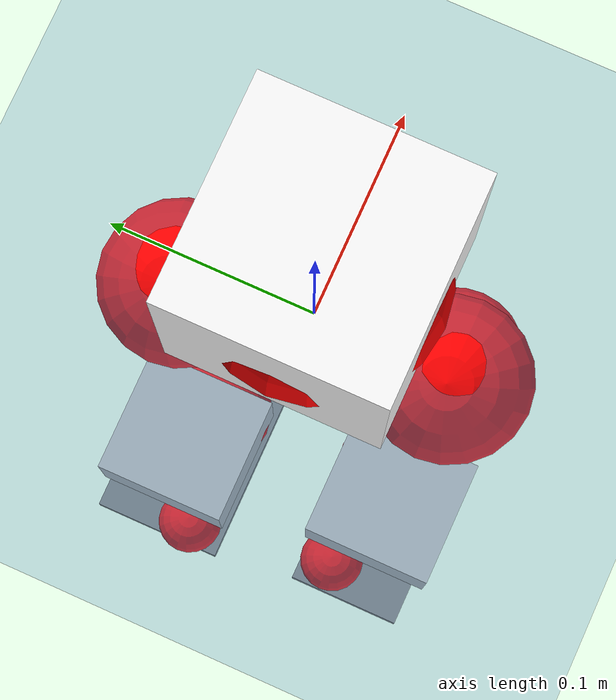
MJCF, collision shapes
<mujoco model="pi_12dof_release_v1">
  <compiler angle="radian" assetdir="assets" balanceinertia="true" inertiafromgeom="false"/>

  <option timestep="0.005" density="1.2" viscosity="2e-05"/>

  <size nkey="1"/>

  <visual>
    <quality shadowsize="8192"/>
    <map shadowclip="0.5"/>
  </visual>

  <default>
    <default class="/">
      <joint armature="0.01" damping="0.01" frictionloss="0.01"/>
      <geom contype="0" conaffinity="0" group="1" solref="-1000 -80"/>
      <site size="0.01 0.005 0.005" group="5"/>
      <general forcelimited="true" biastype="affine" gainprm="20" biasprm="0 -20 -0.5"/>
      <default class="foot">
        <geom size="0.0845 0.036 0.005" type="box" condim="6" group="4" priority="1" friction="0.9 0.2 0.2" solimp="0.015 1 0.005"/>
      </default>
      <default class="reward_collision_sphere">
        <geom group="5" rgba="1 0 0 1"/>
      </default>
    </default>
  </default>

  <asset>
    <texture type="skybox" colorspace="auto" name="//unnamed_texture_0" builtin="gradient" rgb1="0.95 0.95 0.95" rgb2="0.95 0.95 0.95" width="100" height="600"/>
    <texture type="2d" colorspace="auto" name="texplane" builtin="checker" rgb1="0.345 0.575 0.748" rgb2="0.345 0.575 0.748" markrgb="1 1 1" width="512" height="512"/>
    <material name="MatPlane" class="/" texture="texplane" texuniform="true" texrepeat="2 2" specular="0.9"/>
    <mesh name="baselink_1" class="/" file="baselink_1.STL"/>
    <mesh name="r_hip_pitch_link" class="/" file="r_hip_pitch_link.STL"/>
    <mesh name="r_hip_roll_link" class="/" file="r_hip_roll_link.STL"/>
    <mesh name="r_thigh_link" class="/" file="r_thigh_link.STL"/>
    <mesh name="r_calf_link" class="/" file="r_calf_link.STL"/>
    <mesh name="r_ankle_pitch_link" class="/" file="r_ankle_pitch_link.STL"/>
    <mesh name="r_ankle_roll_link" class="/" file="r_ankle_roll_link.STL"/>
    <mesh name="l_hip_pitch_link" class="/" file="l_hip_pitch_link.STL"/>
    <mesh name="l_hip_roll_link" class="/" file="l_hip_roll_link.STL"/>
    <mesh name="l_thigh_link" class="/" file="l_thigh_link.STL"/>
    <mesh name="l_calf_link" class="/" file="l_calf_link.STL"/>
    <mesh name="l_ankle_pitch_link" class="/" file="l_ankle_pitch_link.STL"/>
    <mesh name="l_ankle_roll_link" class="/" file="l_ankle_roll_link.STL"/>
  </asset>

  <worldbody>
    <geom name="floor" class="/" size="100 100 0.125" type="plane" group="0" material="MatPlane"/>
    <light name="toplight_shadow" class="/" pos="0 0 5" dir="0.0990148 0.0990148 -0.990148" type="directional" ambient="0.04 0.04 0.04" diffuse="0.55 0.55 0.55" specular="0.12 0.12 0.12"/>
    <light name="toplight_fill" class="/" pos="0 0 5" dir="0.0990148 0.0990148 -0.990148" type="directional" castshadow="false" ambient="0.04 0.04 0.04" diffuse="0.3 0.3 0.3" specular="0.08 0.08 0.08"/>
    <body name="trunk" pos="7.37103e-05 -0.00280822 -0.00149264" quat="0.999999 7.28598e-05 0.000609747 -0.00125933">
      <inertial pos="-0.00037522 -0.00127098 0.0502308" quat="0.694538 0.0171062 0.0211601 0.718941" mass="2.16648" diaginertia="0.00783668 0.00397647 0.00939928"/>
      <joint name="//unnamed_joint_0" type="free"/>
      <geom name="//unnamed_geom_1" class="/" type="mesh" density="0" rgba="1 1 1 1" mesh="baselink_1"/>
      <geom name="//unnamed_geom_2" class="/" size="0.0497823 0.0497823 0.0497823" pos="0 0 0.0939006" type="box" rgba="1 1 1 1"/>
      <geom name="//unnamed_geom_3" class="reward_collision_sphere" size="0.0547606" pos="0 0 0.082163"/>
      <site name="imu" class="/" pos="0.00463325 -0.0049895 -0.00495246" size="0.00995647"/>
      <camera name="track" class="/" pos="0 -1.7031 0" quat="0.707107 0.707107 0 0" mode="trackcom"/>
      <camera name="ego_camera" class="/" pos="0.0721223 0 0.211276" quat="-0.5 -0.5 0.5 0.5"/>
      <body name="r_hip_pitch_link" pos="0.00249644 -0.0195145 -0.0383808" quat="0.992229 0.000125546 -0.124422 -9.27456e-05">
        <inertial pos="0.00149948 -0.0499433 -0.00185259" quat="-0.0192034 0.706352 -0.0281589 0.70704" mass="0.364438" diaginertia="9.07716e-05 4.26894e-05 0.000187929"/>
        <joint name="r_hip_pitch_joint" class="/" pos="0 0 0" axis="0.00263423 -0.999994 0.00205057" stiffness="0.0052131" range="-1.69098 1.30347" armature="0.0104624" damping="0.0180283" frictionloss="0.01067"/>
        <geom name="//unnamed_geom_4" class="/" type="mesh" density="0" rgba="0.75294 0.75294 0.75294 1" mesh="r_hip_pitch_link"/>
        <geom name="//unnamed_geom_5" class="/" size="0.000497823 0.000497823 0.000497823" type="box" rgba="0.75294 0.75294 0.75294 1"/>
        <body name="r_hip_roll_link" pos="0.00258958 -0.0441611 0.00186061" quat="1 -5.96301e-05 0.000312886 -6.83074e-05">
          <inertial pos="-0.00186582 -0.00085268 -0.0732621" quat="0.707242 -0.0897242 -0.0829715 0.696329" mass="0.398047" diaginertia="0.000269264 0.000126584 0.00028726"/>
          <joint name="r_hip_roll_joint" class="/" pos="0 0 0" axis="-0.999913 -0.012375 -0.00460628" range="-0.11205 0.509094" armature="0.0112967" damping="0.0214933" frictionloss="0.0104282"/>
          <geom name="//unnamed_geom_6" class="/" type="mesh" density="0" rgba="0.75294 0.75294 0.75294 1" mesh="r_hip_roll_link"/>
          <geom name="//unnamed_geom_7" class="/" size="0.000497823 0.000497823 0.000497823" type="box" rgba="0.75294 0.75294 0.75294 1"/>
          <geom name="//unnamed_geom_8" class="reward_collision_sphere" size="0.0398259"/>
          <body name="r_thigh_link" pos="0.000702227 0.00548776 -0.082562" quat="1 -0.000405646 -0.000411042 -0.000221315">
            <inertial pos="-0.00132411 -0.00155573 -0.0582498" quat="0.739266 0.673352 0.0067555 0.00608268" mass="0.109689" diaginertia="9.87888e-05 4.16558e-05 0.000125916"/>
            <joint name="r_thigh_joint" class="/" pos="0 0 0" axis="-0.00790026 -0.00283767 -0.999965" range="-0.322204 0.57272" armature="0.0111739" damping="0.00517922" frictionloss="0.0105372"/>
            <geom name="//unnamed_geom_9" class="/" type="mesh" density="0" rgba="0.75294 0.75294 0.75294 1" mesh="r_thigh_link"/>
            <geom name="//unnamed_geom_10" class="/" size="0.000497823 0.000497823 0.000497823" type="box" rgba="0.75294 0.75294 0.75294 1"/>
            <body name="r_calf_link" pos="-0.000139303 -0.00199929 -0.085399" quat="0.947586 -2.60188e-05 0.3195 0.000130717">
              <inertial pos="-0.000429737 0.00164223 -0.0840268" quat="0.99991 -0.00214097 0.00179327 0.0131596" mass="0.77986" diaginertia="0.00278761 0.00156846 0.000396562"/>
              <joint name="r_calf_joint" class="/" pos="0 0 0" axis="0.000587644 -0.999992 0.00398389" range="-1.70532 0.651532" armature="0.00990164" damping="0" frictionloss="0.0107727"/>
              <geom name="//unnamed_geom_11" class="/" type="mesh" density="0" rgba="0.75294 0.75294 0.75294 1" mesh="r_calf_link"/>
              <geom name="//unnamed_geom_12" class="/" size="0.000497823 0.000497823 0.000497823" type="box" rgba="0.75294 0.75294 0.75294 1"/>
              <geom name="//unnamed_geom_13" class="reward_collision_sphere" size="0.0398259"/>
              <body name="r_ankle_pitch_link" pos="-0.00197511 0.00134173 -0.165827" quat="0.980076 5.27976e-05 -0.198623 7.14417e-05">
                <inertial pos="0.00709408 0.000283618 0.00118876" quat="0.00181978 0.700833 -0.00562926 0.713301" mass="0.176181" diaginertia="0.000243735 9.92535e-05 0.000266742"/>
                <joint name="r_ankle_pitch_joint" class="/" pos="0 0 0" axis="-0.000397403 -0.999997 0.00259712" range="-1.3533 0.471261" armature="0.0109392" damping="0.00679488" frictionloss="0.0108825"/>
                <geom name="//unnamed_geom_14" class="/" type="mesh" density="0" rgba="0.75294 0.75294 0.75294 1" mesh="r_ankle_pitch_link"/>
                <geom name="//unnamed_geom_15" class="/" size="0.0388302 0.0398259 0.0248912" type="box" rgba="0.75294 0.75294 0.75294 1"/>
                <body name="r_ankle_roll_link" pos="0.0720471 0.00231264 0.00153035" quat="1 -3.74648e-05 -0.000127201 -6.99101e-05">
                  <inertial pos="-0.0259011 0.00301189 -0.0179646" quat="0.566737 0.42287 0.429666 0.561585" mass="0.515609" diaginertia="0.000914037 0.000481954 0.00061424"/>
                  <joint name="r_ankle_roll_joint" class="/" pos="0 0 0" axis="-1 9.37872e-05 -0.000365025" stiffness="0.00729624" range="-0.138568 0.200689" armature="0.0105133" damping="0.0227462" frictionloss="0.0107235"/>
                  <geom name="//unnamed_geom_16" class="/" type="mesh" density="0" rgba="0.75294 0.75294 0.75294 1" mesh="r_ankle_roll_link"/>
                  <geom name="//unnamed_geom_17" class="/" type="mesh" rgba="0.75294 0.75294 0.75294 1" mesh="r_ankle_roll_link"/>
                  <geom name="right_foot" class="foot" size="0.0866386 0.0353463 0.00500225" pos="-0.0490432 0 -0.0516453"/>
                  <geom name="//unnamed_geom_19" class="reward_collision_sphere" size="0.0398259" pos="-0.0480816 0 -0.0234752"/>
                  <geom name="//unnamed_geom_20" class="reward_collision_sphere" size="0.0199129" pos="0.0144245 0.017031 -0.0469503"/>
                  <geom name="//unnamed_geom_21" class="reward_collision_sphere" size="0.0199129" pos="-0.115396 0.017031 -0.0469503"/>
                  <site name="right_foot" class="foot" pos="-0.0490432 0 -0.0516453" size="0.00995647"/>
                </body>
              </body>
            </body>
          </body>
        </body>
      </body>
      <body name="l_hip_pitch_link" pos="-0.00343053 0.022766 -0.0360004" quat="0.992176 -0.000409898 -0.124843 0.000468536">
        <inertial pos="0.00102377 0.0450027 0.00283351" quat="-0.0400145 0.703591 0.0291784 0.708877" mass="0.371913" diaginertia="0.000102511 4.42877e-05 0.000226041"/>
        <joint name="l_hip_pitch_joint" class="/" pos="0 0 0" axis="0.00146323 0.999984 0.00544249" stiffness="0.00627535" range="-1.2671 1.79458" armature="0.0103692" damping="0.0059265" frictionloss="0.00980366"/>
        <geom name="//unnamed_geom_22" class="/" type="mesh" density="0" rgba="0.75294 0.75294 0.75294 1" mesh="l_hip_pitch_link"/>
        <geom name="//unnamed_geom_23" class="/" size="0.000497823 0.000497823 0.000497823" type="box" rgba="0.75294 0.75294 0.75294 1"/>
        <body name="l_hip_roll_link" pos="-0.00140761 0.0450395 0.00249903" quat="1 0.000594583 0.000159666 0.000230378">
          <inertial pos="-0.00169442 0.000330257 -0.0702267" quat="0.694022 -0.0806775 -0.0690753 0.712076" mass="0.380234" diaginertia="0.000265536 0.000129155 0.000294196"/>
          <joint name="l_hip_roll_joint" class="/" pos="0 0 0" axis="-0.999928 -0.00841267 0.00854164" stiffness="0.0072315" range="-0.492892 0.145543" armature="0.0103215" damping="0.00378406" frictionloss="0.00856736"/>
          <geom name="//unnamed_geom_24" class="/" type="mesh" density="0" rgba="0.75294 0.75294 0.75294 1" mesh="l_hip_roll_link"/>
          <geom name="//unnamed_geom_25" class="/" size="0.000497823 0.000497823 0.000497823" type="box" rgba="0.75294 0.75294 0.75294 1"/>
          <geom name="//unnamed_geom_26" class="reward_collision_sphere" size="0.0398259"/>
          <body name="l_thigh_link" pos="-0.00279151 -0.000331322 -0.0784635" quat="0.999999 0.000967777 -0.000731456 0.000680288">
            <inertial pos="-0.000205886 0.00107153 -0.0549821" quat="0.671628 0.740888 -0.00059921 0.000598595" mass="0.108892" diaginertia="9.89606e-05 4.08429e-05 0.000124579"/>
            <joint name="l_thigh_joint" class="/" pos="0 0 0" axis="0.0013534 0.00209787 -0.999997" stiffness="0.0103008" range="-0.570827 0.313391" armature="0.00843464" damping="0" frictionloss="0.0107823"/>
            <geom name="//unnamed_geom_27" class="/" type="mesh" density="0" rgba="0.75294 0.75294 0.75294 1" mesh="l_thigh_link"/>
            <geom name="//unnamed_geom_28" class="/" size="0.000497823 0.000497823 0.000497823" type="box" rgba="0.75294 0.75294 0.75294 1"/>
            <body name="l_calf_link" pos="-0.00155696 -0.00122272 -0.0810292" quat="0.947679 5.7523e-05 0.319224 -9.71902e-05">
              <inertial pos="-0.000694275 0.000644982 -0.0834406" quat="0.999987 0.00336547 -1.75199e-05 0.00369882" mass="0.778603" diaginertia="0.00279942 0.0015426 0.000376847"/>
              <joint name="l_calf_joint" class="/" pos="0 0 0" axis="-0.00168631 0.999923 -0.0122676" range="-0.60735 1.61966" armature="0.00874753" damping="0.00954028" frictionloss="0.0105634"/>
              <geom name="//unnamed_geom_29" class="/" type="mesh" density="0" rgba="0.75294 0.75294 0.75294 1" mesh="l_calf_link"/>
              <geom name="//unnamed_geom_30" class="/" size="0.000497823 0.000497823 0.000497823" type="box" rgba="0.75294 0.75294 0.75294 1"/>
              <geom name="//unnamed_geom_31" class="reward_collision_sphere" size="0.0398259"/>
              <body name="l_ankle_pitch_link" pos="-0.00278211 0.00315114 -0.167183" quat="0.980032 0.00088242 -0.198836 0.000443796">
                <inertial pos="0.00547336 -0.0035046 0.000550524" quat="-0.00124386 0.706919 0.00396058 0.707282" mass="0.177991" diaginertia="0.000257629 9.84178e-05 0.000259421"/>
                <joint name="l_ankle_pitch_joint" class="/" pos="0 0 0" axis="0.00120743 0.99999 0.00440043" stiffness="0.000444114" range="-0.495714 1.30818" armature="0.00912542" damping="0.0190616" frictionloss="0.00854395"/>
                <geom name="//unnamed_geom_32" class="/" type="mesh" density="0" rgba="0.75294 0.75294 0.75294 1" mesh="l_ankle_pitch_link"/>
                <geom name="//unnamed_geom_33" class="/" size="0.0388302 0.0398259 0.0248912" type="box" rgba="0.75294 0.75294 0.75294 1"/>
                <body name="l_ankle_roll_link" pos="0.0742747 -0.000976802 0.00170537" quat="1 -0.000190174 -1.24381e-05 -0.000161415">
                  <inertial pos="-0.026731 -0.0010647 -0.015935" quat="0.559568 0.43086 0.433814 0.559508" mass="0.529704" diaginertia="0.000944851 0.00047676 0.000638412"/>
                  <joint name="l_ankle_roll_joint" class="/" pos="0 0 0" axis="-0.999993 -0.00358137 0.00096248" range="-0.134815 0.156753" armature="0.0101506" damping="0" frictionloss="0.00897214"/>
                  <geom name="//unnamed_geom_34" class="/" type="mesh" density="0" rgba="0.75294 0.75294 0.75294 1" mesh="l_ankle_roll_link"/>
                  <geom name="//unnamed_geom_35" class="/" type="mesh" rgba="0.75294 0.75294 0.75294 1" mesh="l_ankle_roll_link"/>
                  <geom name="left_foot" class="foot" size="0.0799208 0.0402676 0.00449216" pos="-0.0490432 0 -0.0516453"/>
                  <geom name="//unnamed_geom_37" class="reward_collision_sphere" size="0.0398259" pos="-0.0480816 0 -0.0234752"/>
                  <geom name="//unnamed_geom_38" class="reward_collision_sphere" size="0.0199129" pos="0.0144245 -0.017031 -0.0469503"/>
                  <geom name="//unnamed_geom_39" class="reward_collision_sphere" size="0.0199129" pos="-0.115396 -0.017031 -0.0469503"/>
                  <site name="left_foot" class="foot" pos="-0.0490432 0 -0.0516453" size="0.00995647"/>
                </body>
              </body>
            </body>
          </body>
        </body>
      </body>
    </body>
  </worldbody>

  <contact>
    <pair class="/" geom1="floor" geom2="right_foot" name="//unnamed_contact_1"/>
    <pair class="/" geom1="floor" geom2="left_foot" name="//unnamed_contact_0"/>
  </contact>

  <actuator>
    <general name="r_hip_pitch_joint" class="/" joint="r_hip_pitch_joint" forcerange="-19.2051 19.2051" gainprm="18.7161" biasprm="0 -18.7161 -0.542925"/>
    <general name="r_hip_roll_joint" class="/" joint="r_hip_roll_joint" forcerange="-21.4727 21.4727" gainprm="18.7161" biasprm="0 -18.7161 -0.542925"/>
    <general name="r_thigh_joint" class="/" joint="r_thigh_joint" forcerange="-21.1316 21.1316" gainprm="18.7161" biasprm="0 -18.7161 -0.542925"/>
    <general name="r_calf_joint" class="/" joint="r_calf_joint" forcerange="-20.123 20.123" gainprm="18.7161" biasprm="0 -18.7161 -0.542925"/>
    <general name="r_ankle_pitch_joint" class="/" joint="r_ankle_pitch_joint" forcerange="-21.0748 21.0748" gainprm="18.7161" biasprm="0 -18.7161 -0.542925"/>
    <general name="r_ankle_roll_joint" class="/" joint="r_ankle_roll_joint" forcerange="-22.8841 22.8841" gainprm="18.7161" biasprm="0 -18.7161 -0.542925"/>
    <general name="l_hip_pitch_joint" class="/" joint="l_hip_pitch_joint" forcerange="-23.0177 23.0177" gainprm="18.7161" biasprm="0 -18.7161 -0.542925"/>
    <general name="l_hip_roll_joint" class="/" joint="l_hip_roll_joint" forcerange="-20.5151 20.5151" gainprm="18.7161" biasprm="0 -18.7161 -0.542925"/>
    <general name="l_thigh_joint" class="/" joint="l_thigh_joint" forcerange="-20.2589 20.2589" gainprm="18.7161" biasprm="0 -18.7161 -0.542925"/>
    <general name="l_calf_joint" class="/" joint="l_calf_joint" forcerange="-18.805 18.805" gainprm="18.7161" biasprm="0 -18.7161 -0.542925"/>
    <general name="l_ankle_pitch_joint" class="/" joint="l_ankle_pitch_joint" forcerange="-21.5115 21.5115" gainprm="18.7161" biasprm="0 -18.7161 -0.542925"/>
    <general name="l_ankle_roll_joint" class="/" joint="l_ankle_roll_joint" forcerange="-18.7773 18.7773" gainprm="18.7161" biasprm="0 -18.7161 -0.542925"/>
  </actuator>

  <sensor>
    <gyro site="imu" name="imu_angular_velocity"/>
    <velocimeter site="imu" name="imu_linear_velocity"/>
    <framelinvel objtype="site" objname="left_foot" name="left_foot_global_linear_velocity"/>
    <framelinvel objtype="site" objname="right_foot" name="right_foot_global_linear_velocity"/>
  </sensor>

  <keyframe>
    <key name="home" qpos="0 0 0.291 1 0 0 0 0.4 0 0 -0.8 0.4 0 -0.4 0 0 0.8 -0.4 0"/>
  </keyframe>
</mujoco>
